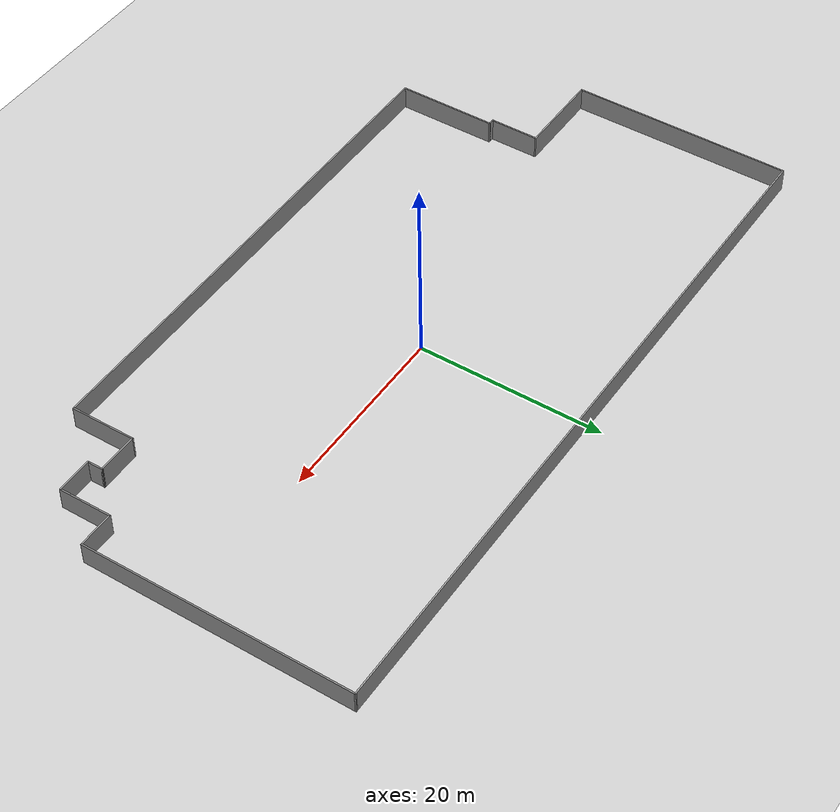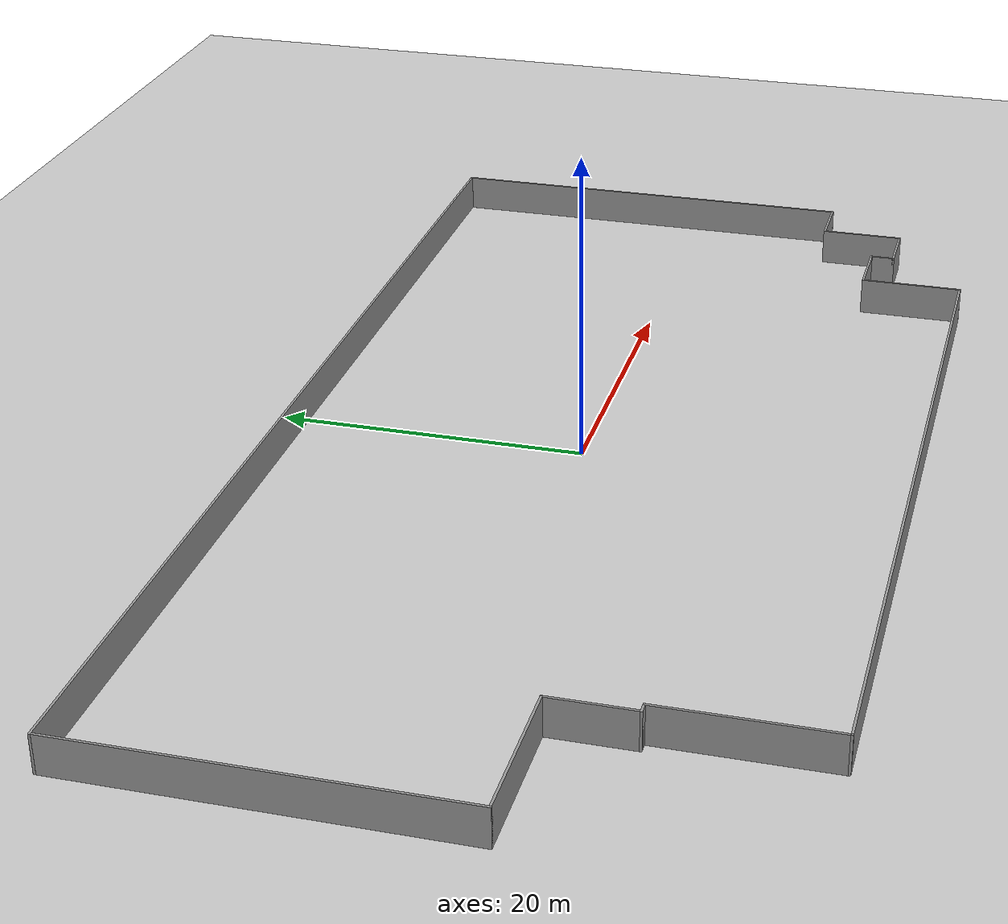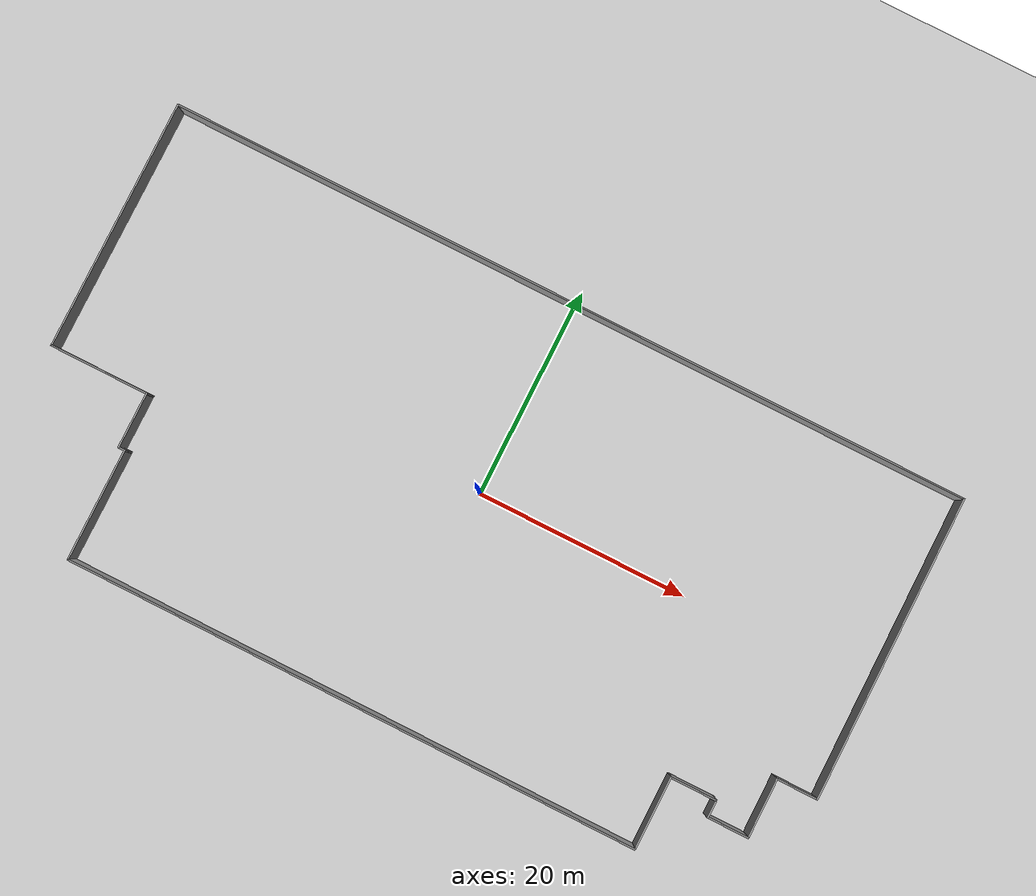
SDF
<sdf version="1.6">
 <world name="default">
  <light name="sun" type="directional">
   <pose>0 0 10 0 -0 0</pose>
   <diffuse>0.8 0.8 0.8 1</diffuse>
   <specular>0.1 0.1 0.1 1</specular>
   <attenuation>
    <range>1000</range>
    <constant>0.9</constant>
    <linear>0.01</linear>
    <quadratic>0.001</quadratic>
   </attenuation>
   <direction>-0.5 0.5 -1</direction>
  </light>
  <model name="ground_plane">
   <static>1</static>
   <link name="link">
    <collision name="collision">
     <geometry><plane><normal>0 0 1</normal><size>100 100</size></plane></geometry>
     <surface><friction><ode><mu>100</mu><mu2>50</mu2></ode></friction></surface>
    </collision>
    <visual name="visual">
     <cast_shadows>0</cast_shadows>
     <geometry><plane><normal>0 0 1</normal><size>100 100</size></plane></geometry>
     <material>
      <script><uri>file://media/materials/scripts/gazebo.material</uri><name>Gazebo/Grey</name></script>
     </material>
    </visual>
   </link>
  </model>
  <gravity>0 0 -9.8</gravity>
  <magnetic_field>6e-06 2.3e-05 -4.2e-05</magnetic_field>
  <atmosphere type="adiabatic"/>
  <physics name="default_physics" default="0" type="ode">
   <max_step_size>0.001</max_step_size>
   <real_time_factor>1</real_time_factor>
   <real_time_update_rate>1000</real_time_update_rate>
  </physics>
  <scene><ambient>0.4 0.4 0.4 1</ambient><background>0.7 0.7 0.7 1</background><shadows>1</shadows></scene>
  <spherical_coordinates>
   <surface_model>EARTH_WGS84</surface_model>
   <latitude_deg>0</latitude_deg>
   <longitude_deg>0</longitude_deg>
   <elevation>0</elevation>
   <heading_deg>0</heading_deg>
  </spherical_coordinates>
  <model name="devon_f1">
   <pose>-0.708563 -1.37859 0 0 -0 0</pose>
   <link name="Wall_11">
    <collision name="Wall_11_Collision">
     <geometry><box><size>4 0.15 2.5</size></box></geometry>
     <pose>0 0 1.25 0 -0 0</pose>
    </collision>
    <visual name="Wall_11_Visual">
     <pose>0 0 1.25 0 -0 0</pose>
     <geometry><box><size>4 0.15 2.5</size></box></geometry>
     <material>
      <script><uri>file://media/materials/scripts/gazebo.material</uri><name>Gazebo/Grey</name></script>
      <ambient>1 1 1 1</ambient>
     </material>
    </visual>
    <pose>36.5 -9 0 0 -0 0</pose>
   </link>
   <link name="Wall_15">
    <collision name="Wall_15_Collision">
     <geometry><box><size>29 0.15 2.5</size></box></geometry>
     <pose>0 0 1.25 0 -0 0</pose>
    </collision>
    <visual name="Wall_15_Visual">
     <pose>0 0 1.25 0 -0 0</pose>
     <geometry><box><size>29 0.15 2.5</size></box></geometry>
     <material>
      <script><uri>file://media/materials/scripts/gazebo.material</uri><name>Gazebo/Grey</name></script>
      <ambient>1 1 1 1</ambient>
     </material>
    </visual>
    <pose>38.425 5.425 0 0 -0 1.5708</pose>
   </link>
   <link name="Wall_16">
    <collision name="Wall_16_Collision">
     <geometry><box><size>77 0.15 2.5</size></box></geometry>
     <pose>0 0 1.25 0 -0 0</pose>
    </collision>
    <visual name="Wall_16_Visual">
     <pose>0 0 1.25 0 -0 0</pose>
     <geometry><box><size>77 0.15 2.5</size></box></geometry>
     <material>
      <script><uri>file://media/materials/scripts/gazebo.material</uri><name>Gazebo/Grey</name></script>
      <ambient>1 1 1 1</ambient>
     </material>
    </visual>
    <pose>0 19.85 0 0 -0 3.14159</pose>
   </link>
   <link name="Wall_17">
    <collision name="Wall_17_Collision">
     <geometry><box><size>24 0.15 2.5</size></box></geometry>
     <pose>0 0 1.25 0 -0 0</pose>
    </collision>
    <visual name="Wall_17_Visual">
     <pose>0 0 1.25 0 -0 0</pose>
     <geometry><box><size>24 0.15 2.5</size></box></geometry>
     <material>
      <script><uri>file://media/materials/scripts/gazebo.material</uri><name>Gazebo/Grey</name></script>
      <ambient>1 1 1 1</ambient>
     </material>
    </visual>
    <pose>-38.425 7.925 0 0 0 -1.5708</pose>
   </link>
   <link name="Wall_18">
    <collision name="Wall_18_Collision">
     <geometry><box><size>9.5 0.15 2.5</size></box></geometry>
     <pose>0 0 1.25 0 -0 0</pose>
    </collision>
    <visual name="Wall_18_Visual">
     <pose>0 0 1.25 0 -0 0</pose>
     <geometry><box><size>9.5 0.15 2.5</size></box></geometry>
     <material>
      <script><uri>file://media/materials/scripts/gazebo.material</uri><name>Gazebo/Grey</name></script>
      <ambient>1 1 1 1</ambient>
     </material>
    </visual>
    <pose>-33.75 -4 0 0 -0 0</pose>
   </link>
   <link name="Wall_2">
    <collision name="Wall_2_Collision">
     <geometry><box><size>55 0.15 2.5</size></box></geometry>
     <pose>0 0 1.25 0 -0 0</pose>
    </collision>
    <visual name="Wall_2_Visual">
     <pose>0 0 1.25 0 -0 0</pose>
     <geometry><box><size>55 0.15 2.5</size></box></geometry>
     <material>
      <script><uri>file://media/materials/scripts/gazebo.material</uri><name>Gazebo/Grey</name></script>
      <ambient>1 1 1 1</ambient>
     </material>
    </visual>
    <pose>-1.05 -19.85 0 0 -0 0</pose>
   </link>
   <link name="Wall_24">
    <collision name="Wall_24_Collision">
     <geometry><box><size>10.75 0.15 2.5</size></box></geometry>
     <pose>0 0 1.25 0 -0 0</pose>
    </collision>
    <visual name="Wall_24_Visual">
     <pose>0 0 1.25 0 -0 0</pose>
     <geometry><box><size>10.75 0.15 2.5</size></box></geometry>
     <material>
      <script><uri>file://media/materials/scripts/gazebo.material</uri><name>Gazebo/Grey</name></script>
      <ambient>1 1 1 1</ambient>
     </material>
    </visual>
    <pose>-28.475 -14.55 0 0 -0 1.5708</pose>
   </link>
   <link name="Wall_27">
    <collision name="Wall_27_Collision">
     <geometry><box><size>0.75 0.15 2.5</size></box></geometry>
     <pose>0 0 1.25 0 -0 0</pose>
    </collision>
    <visual name="Wall_27_Visual">
     <pose>0 0 1.25 0 -0 0</pose>
     <geometry><box><size>0.75 0.15 2.5</size></box></geometry>
     <material>
      <script><uri>file://media/materials/scripts/gazebo.material</uri><name>Gazebo/Grey</name></script>
      <ambient>1 1 1 1</ambient>
     </material>
    </visual>
    <pose>-28.775 -9.25 0 0 -0 3.14159</pose>
   </link>
   <link name="Wall_28">
    <collision name="Wall_28_Collision">
     <geometry><box><size>5.4 0.15 2.5</size></box></geometry>
     <pose>0 0 1.25 0 -0 0</pose>
    </collision>
    <visual name="Wall_28_Visual">
     <pose>0 0 1.25 0 -0 0</pose>
     <geometry><box><size>5.4 0.15 2.5</size></box></geometry>
     <material>
      <script><uri>file://media/materials/scripts/gazebo.material</uri><name>Gazebo/Grey</name></script>
      <ambient>1 1 1 1</ambient>
     </material>
    </visual>
    <pose>-29.075 -6.625 0 0 -0 1.5708</pose>
   </link>
   <link name="Wall_3">
    <collision name="Wall_3_Collision">
     <geometry><box><size>7 0.15 2.5</size></box></geometry>
     <pose>0 0 1.25 0 -0 0</pose>
    </collision>
    <visual name="Wall_3_Visual">
     <pose>0 0 1.25 0 -0 0</pose>
     <geometry><box><size>7 0.15 2.5</size></box></geometry>
     <material>
      <script><uri>file://media/materials/scripts/gazebo.material</uri><name>Gazebo/Grey</name></script>
      <ambient>1 1 1 1</ambient>
     </material>
    </visual>
    <pose>26.375 -16.425 0 0 -0 1.5708</pose>
   </link>
   <link name="Wall_4">
    <collision name="Wall_4_Collision">
     <geometry><box><size>4.5 0.15 2.5</size></box></geometry>
     <pose>0 0 1.25 0 -0 0</pose>
    </collision>
    <visual name="Wall_4_Visual">
     <pose>0 0 1.25 0 -0 0</pose>
     <geometry><box><size>4.5 0.15 2.5</size></box></geometry>
     <material>
      <script><uri>file://media/materials/scripts/gazebo.material</uri><name>Gazebo/Grey</name></script>
      <ambient>1 1 1 1</ambient>
     </material>
    </visual>
    <pose>28.55 -13 0 0 -0 0</pose>
   </link>
   <link name="Wall_5">
    <collision name="Wall_5_Collision">
     <geometry><box><size>1.75 0.15 2.5</size></box></geometry>
     <pose>0 0 1.25 0 -0 0</pose>
    </collision>
    <visual name="Wall_5_Visual">
     <pose>0 0 1.25 0 -0 0</pose>
     <geometry><box><size>1.75 0.15 2.5</size></box></geometry>
     <material>
      <script><uri>file://media/materials/scripts/gazebo.material</uri><name>Gazebo/Grey</name></script>
      <ambient>1 1 1 1</ambient>
     </material>
    </visual>
    <pose>30.725 -13.8 0 0 0 -1.5708</pose>
   </link>
   <link name="Wall_6">
    <collision name="Wall_6_Collision">
     <geometry><box><size>4 0.15 2.5</size></box></geometry>
     <pose>0 0 1.25 0 -0 0</pose>
    </collision>
    <visual name="Wall_6_Visual">
     <pose>0 0 1.25 0 -0 0</pose>
     <geometry><box><size>4 0.15 2.5</size></box></geometry>
     <material>
      <script><uri>file://media/materials/scripts/gazebo.material</uri><name>Gazebo/Grey</name></script>
      <ambient>1 1 1 1</ambient>
     </material>
    </visual>
    <pose>32.65 -14.6 0 0 -0 0</pose>
   </link>
   <link name="Wall_7">
    <collision name="Wall_7_Collision">
     <geometry><box><size>5.75 0.15 2.5</size></box></geometry>
     <pose>0 0 1.25 0 -0 0</pose>
    </collision>
    <visual name="Wall_7_Visual">
     <pose>0 0 1.25 0 -0 0</pose>
     <geometry><box><size>5.75 0.15 2.5</size></box></geometry>
     <material>
      <script><uri>file://media/materials/scripts/gazebo.material</uri><name>Gazebo/Grey</name></script>
      <ambient>1 1 1 1</ambient>
     </material>
    </visual>
    <pose>34.575 -11.8 0 0 -0 1.5708</pose>
   </link>
   <static>1</static>
  </model>
 </world>
</sdf>
